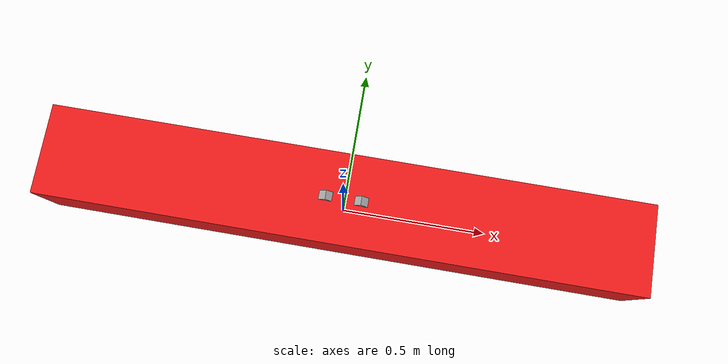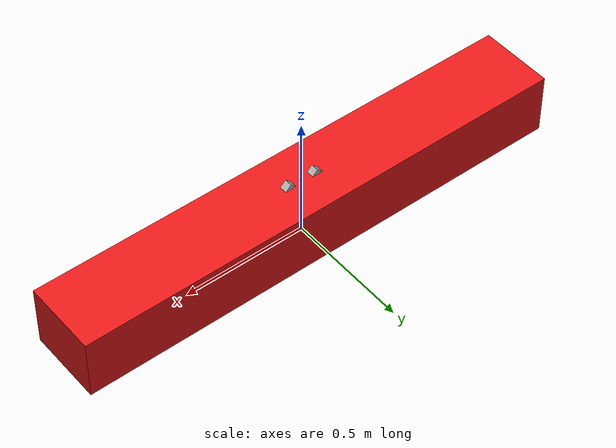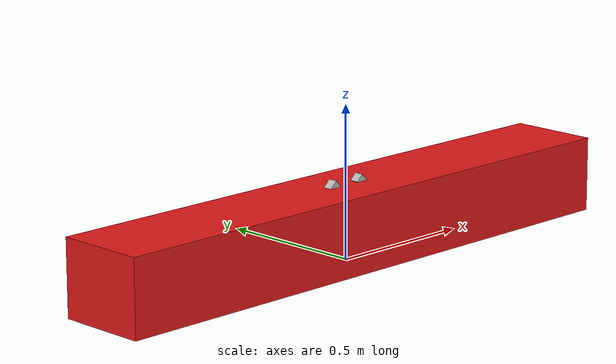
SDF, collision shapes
<?xml version="1.0" ?>
<sdf version="1.6">
    <include>
        <!-- robot model -->
        <uri>model://easys.sdf</uri>

        <!-- TF, odometry plugin -->
        <plugin
            filename="gz-sim-odometry-publisher-system"
            name="gz::sim::systems::OdometryPublisher">
            <odom_publish_frequency>50</odom_publish_frequency>
            <odom_topic>/odom</odom_topic>
            <odom_frame>/map</odom_frame>
            <dimensions>3</dimensions>
            <robot_base_frame>base_link</robot_base_frame>
            <tf_topic>/tf</tf_topic>
        </plugin>

        <!-- Thruster plugin -->
        <plugin
            filename="gz-sim-thruster-system"
            name="gz::sim::systems::Thruster">
            <namespace>easys</namespace>
            <joint_name>left_down_thruster_joint</joint_name>
            <topic>left_down/cmd_thruster</topic>
            <thrust_coefficient>0.004422</thrust_coefficient>
            <fluid_density>1000</fluid_density>
            <propeller_diameter>0.2</propeller_diameter>
        </plugin>

        <plugin
            filename="gz-sim-thruster-system"
            name="gz::sim::systems::Thruster">
            <namespace>easys</namespace>
            <joint_name>right_down_thruster_joint</joint_name>
            <topic>right_down/cmd_thruster</topic>
            <thrust_coefficient>0.004422</thrust_coefficient>
            <fluid_density>1000</fluid_density>
            <propeller_diameter>0.2</propeller_diameter>
        </plugin>

        <plugin
            filename="gz-sim-thruster-system"
            name="gz::sim::systems::Thruster">
            <namespace>easys</namespace>
            <joint_name>left_up_thruster_joint</joint_name>
            <topic>left_up/cmd_thruster</topic>
            <thrust_coefficient>0.004422</thrust_coefficient>
            <fluid_density>1000</fluid_density>
            <propeller_diameter>0.2</propeller_diameter>
        </plugin>

        <plugin
            filename="gz-sim-thruster-system"
            name="gz::sim::systems::Thruster">
            <namespace>easys</namespace>
            <joint_name>right_up_thruster_joint</joint_name>
            <topic>right_up/cmd_thruster</topic>
            <thrust_coefficient>0.004422</thrust_coefficient>
            <fluid_density>1000</fluid_density>
            <propeller_diameter>0.2</propeller_diameter>
        </plugin>

        <!-- hydrodynamics plugin-->
        <plugin
            filename="gz-sim-hydrodynamics-system"
            name="gz::sim::systems::Hydrodynamics">
            <link_name>base_link</link_name>
            <xDotU>-4.876161</xDotU>
            <yDotV>-126.324739</yDotV>
            <zDotW>-126.324739</zDotW>
            <kDotP>0</kDotP>
            <mDotQ>-33.46</mDotQ>
            <nDotR>-33.46</nDotR>
            <xUabsU>-6.2282</xUabsU>
            <xU>0</xU>
            <yVabsV>-601.27</yVabsV>
            <yV>0</yV>
            <zWabsW>-601.27</zWabsW>
            <zW>0</zW>
            <kPabsP>-0.1916</kPabsP>
            <kP>0</kP>
            <mQabsQ>-632.698957</mQabsQ>
            <mQ>0</mQ>
            <nRabsR>-632.698957</nRabsR>
            <nR>0</nR>
        </plugin>
    </include>

</sdf>

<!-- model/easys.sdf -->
<sdf version="1.6">
  <model name="easys">

    <!-- body -->
    <link name="base_link">
      <inertial>
        <mass>147.8671</mass>
        <inertia>
            <ixx>3.000000</ixx>
            <ixy>0</ixy>
            <ixz>0</ixz>
            <iyy>41.980233</iyy>
            <iyz>0</iyz>
            <izz>41.980233</izz>
        </inertia>
      </inertial>
      <collision name="main_body_buoyancy">
      <pose>0 0 0.1215 0 0 0</pose>
          <geometry>
              <box>
                  <size>2 0.3 0.248445166667</size>
              </box>
          </geometry>
      </collision>
      <visual name="body_visual">
        <geometry>
          <mesh>
            <uri>stl/easys.stl</uri>
          </mesh>
        </geometry>
        <material>
          <ambient>0.9 0.9 0.9 1</ambient>
          <diffuse>0.9 0.1 0.1 1</diffuse>
          <specular>0 0 0 0</specular>
          <emissive>0 0 0 1</emissive>
        </material>
      </visual>
    </link>

  <!-- left down thruster -->
    <link name="left_down_thruster_link">
      <pose>0.116 0.04715 0.1215 0 0 0</pose>
      <inertial>
        <pose>0 0 0 0 0 0</pose>
        <mass>0.09</mass>
        <inertia>
            <ixx>0.000143971303</ixx>
            <ixy>0.000000000008</ixy>
            <ixz>-0.000000000224</ixz>
            <iyy>0.000140915448</iyy>
            <iyz>-0.000025236433</iyz>
            <izz>0.000033571862</izz>
        </inertia>
      </inertial>
      <collision name="collision">
        <geometry>
            <box>
                <size>0.03 0.1 0.03</size>
            </box>
        </geometry>
      </collision>
      <visual name="left_down_visual">
        <geometry>
              <box>
                <size>0.05 0.05 0.05</size>
              </box>
          </geometry>
      </visual>
    </link>

    <joint name="left_down_thruster_joint" type="revolute">
      <parent>base_link</parent>
      <child>left_down_thruster_link</child>
      <pose>0 0 0 0 0 0</pose>
      <axis>
        <xyz>0 -1 0</xyz>
        <limit>
            <lower>-1e+12</lower>
            <upper>1e+12</upper>
            <effort>-1</effort>
            <velocity>-1</velocity>
        </limit>
      </axis>
    </joint>

    <!-- right down thruster -->
    <link name="right_down_thruster_link">
      <pose>-0.116 0.04715 0.1215 0 0 0</pose>
      <inertial>
          <pose>0 0 0 0 0 0</pose>
          <mass>0.09</mass>
          <inertia>
              <ixx>0.000143971303</ixx>
              <ixy>0.000000000008</ixy>
              <ixz>-0.000000000224</ixz>
              <iyy>0.000140915448</iyy>
              <iyz>-0.000025236433</iyz>
              <izz>0.000033571862</izz>
          </inertia>
      </inertial>
      <collision name="collision">
          <geometry>
              <box>
                <size>0.03 0.1 0.03</size>
              </box>
          </geometry>
      </collision>
      <visual name="right_down_visual">
        <geometry>
              <box>
                <size>0.05 0.05 0.05</size>
              </box>
          </geometry>
      </visual>
    </link>

    <joint name="right_down_thruster_joint" type="revolute">
      <parent>base_link</parent>
      <child>right_down_thruster_link</child>
      <pose>0 0 0 0 0 0</pose>
      <axis>
        <xyz>0 -1 0</xyz>
        <limit>
            <lower>-1e+12</lower>
            <upper>1e+12</upper>
            <effort>-1</effort>
            <velocity>-1</velocity>
        </limit>
      </axis>
    </joint>

    <!-- left up thruster -->
    <link name="left_up_thruster_link">
      <pose>0.08255 0 0.22255 0.785 0 1.57</pose>
      <inertial>
          <pose>0 0 0 0 0 0</pose>
          <mass>0.09</mass>
          <inertia>
              <ixx>0.000143971303</ixx>
              <ixy>0.000000000008</ixy>
              <ixz>-0.000000000224</ixz>
              <iyy>0.000140915448</iyy>
              <iyz>-0.000025236433</iyz>
              <izz>0.000033571862</izz>
          </inertia>
      </inertial>
      <collision name="collision">
          <geometry>
              <box>
                <size>0.03 0.1 0.03</size>
              </box>
          </geometry>
      </collision>
      <visual name="left_up_visual">
        <geometry>
              <box>
                <size>0.05 0.05 0.05</size>
              </box>
          </geometry>
      </visual>
    </link>

    <joint name="left_up_thruster_joint" type="revolute">
      <parent>base_link</parent>
      <child>left_up_thruster_link</child>
      <pose>0 0 0 0 0 0</pose>
      <axis>
        <xyz>0 1 0</xyz>
        <limit>
            <lower>-1e+12</lower>
            <upper>1e+12</upper>
            <effort>-1</effort>
            <velocity>-1</velocity>
        </limit>
      </axis>
    </joint>

    <!-- right up thruster -->
    <link name="right_up_thruster_link">
      <pose>-0.08255 0 0.22255 -0.785 0 1.57</pose>
      <inertial>
          <pose>0 0 0 0 0 0</pose>
          <mass>0.09</mass>
          <inertia>
              <ixx>0.000143971303</ixx>
              <ixy>0.000000000008</ixy>
              <ixz>-0.000000000224</ixz>
              <iyy>0.000140915448</iyy>
              <iyz>-0.000025236433</iyz>
              <izz>0.000033571862</izz>
          </inertia>
      </inertial>
      <collision name="collision">
          <geometry>
              <box>
                <size>0.03 0.1 0.03</size>
              </box>
          </geometry>
      </collision>
      <visual name="left_up_visual">
        <geometry>
              <box>
                <size>0.05 0.05 0.05</size>
              </box>
          </geometry>
      </visual>
    </link>

    <joint name="right_up_thruster_joint" type="revolute">
      <parent>base_link</parent>
      <child>right_up_thruster_link</child>
      <pose>0 0 0 0 0 0</pose>
      <axis>
        <xyz>0 -1 0</xyz>
        <limit>
            <lower>-1e+12</lower>
            <upper>1e+12</upper>
            <effort>-1</effort>
            <velocity>-1</velocity>
        </limit>
      </axis>
    </joint>

    <!-- IMU -->
    <plugin
      filename="gz-sim-imu-system"
      name="gz::sim::systems::Imu">
    </plugin>
    <link name="imu_link">
        <pose>0 0 0 0 0 1.57</pose>
        <sensor name="imu" type="imu">
            <always_on>1</always_on>
            <update_rate>100</update_rate>
            <visualize>true</visualize>
            <topic>imu</topic>
            <enable_metrics>true</enable_metrics>
        </sensor>
    </link>
    <joint name="imu_joint" type="fixed">
        <parent>base_link</parent>
        <child>imu_link</child>
        <pose>0 0 0 0 0 0</pose>
    </joint>

    <!-- camera -->
    <plugin
      filename="gz-sim-sensors-system"
      name="gz::sim::systems::Sensors">
      <render_engine>ogre2</render_engine>
    </plugin>
    <link name="camera_link">
      <pose>0 0 0 0 0 -1.57</pose>
      <sensor name="camera" type="camera">
        <camera>
          <horizontal_fov>1.047</horizontal_fov>
          <image>
            <width>320</width>
            <height>240</height>
          </image>
          <clip>
            <near>0.1</near>
            <far>100</far>
          </clip>
        </camera>
        <always_on>1</always_on>
        <update_rate>30</update_rate>
        <visualize>true</visualize>
        <topic>camera</topic>
      </sensor>
    </link>
    <joint name="camera_joint" type="fixed">
        <parent>base_link</parent>
        <child>camera_link</child>
        <pose>0 0 0 0 0 0</pose>
    </joint>
  </model>
</sdf>
